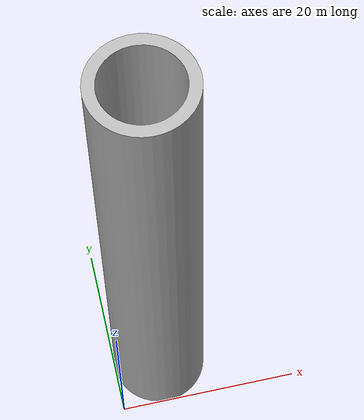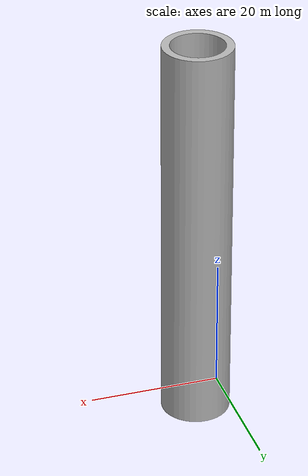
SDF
<?xml version="1.0" ?>
<sdf version="1.4">
  <model name="pipe">
    <static>false</static>
    <link name="link">
    <inertial>
      <pose>0.02 0.02750 0.02 0 0 0</pose>
      <mass>0.0200 </mass>
	  <inertia>
	    <ixx>0.0000089572</ixx>
	    <ixy>0.0</ixy>
	    <ixz>0.0</ixz>
	    <iyy>0.000007379</iyy>
	    <iyz>0.0</iyz>
	    <izz>0.0000089572</izz>
	  </inertia>
    </inertial>
      <collision name="collision">
        <pose>0 0 0 0 0 0</pose>
         <geometry>
          <mesh>
            <scale>0.001 0.001 0.001</scale>
            <uri>/catkin_ws/src/models/pipe/meshes/pipe.STL</uri>
          </mesh>
        </geometry>
          <surface>
            <friction>
              <ode>
                <mu>0.99</mu>
                <mu2>0.99</mu2>
              </ode>
            </friction>
          </surface>
      </collision>
      <visual name="visual">
        <geometry>
          <mesh>
            <scale>0.001 0.001 0.001</scale>
            <uri>/catkin_ws/src/models/pipe/meshes/pipe.STL</uri>
          </mesh>
        </geometry>
      </visual>
    </link>
  </model>
</sdf>
